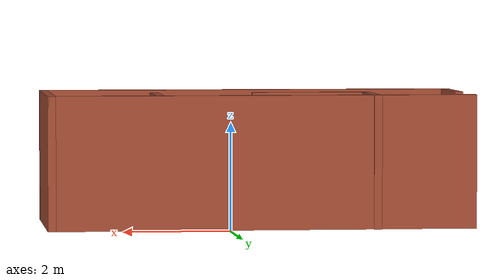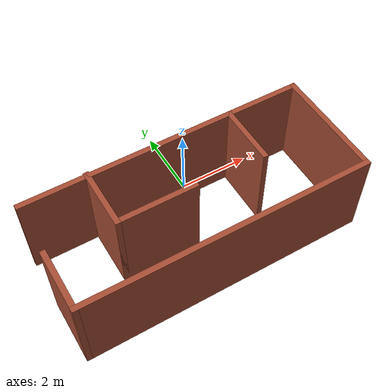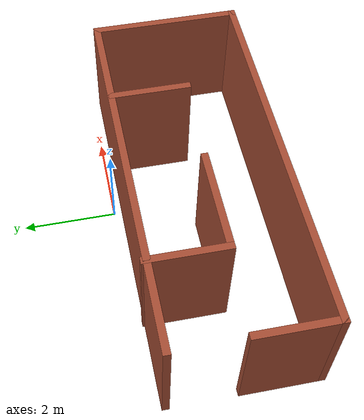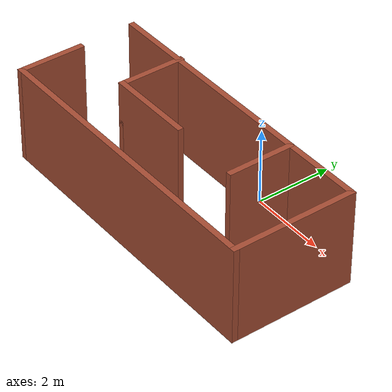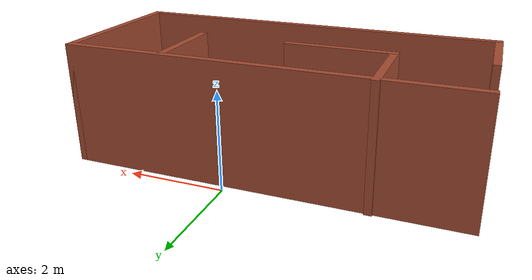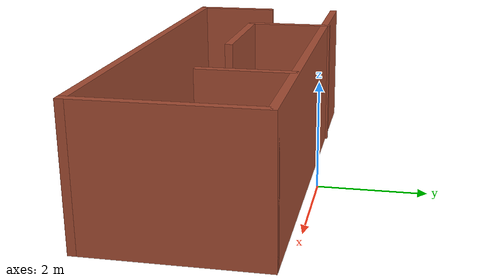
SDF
<?xml version='1.0'?>
<sdf version='1.7'>
  <model name='Untitled'>
    <pose>-0.635 -1.7075 0 0 -0 0</pose>
    <link name='Wall_0'>
      <collision name='Wall_0_Collision'>
        <geometry>
          <box>
            <size>8 0.15 2.5</size>
          </box>
        </geometry>
        <pose>0 0 1.25 0 -0 0</pose>
      </collision>
      <visual name='Wall_0_Visual'>
        <pose>0 0 1.25 0 -0 0</pose>
        <geometry>
          <box>
            <size>8 0.15 2.5</size>
          </box>
        </geometry>
        <material>
          <script>
            <uri>file://media/materials/scripts/gazebo.material</uri>
            <name>Gazebo/Bricks</name>
          </script>
          <ambient>1 1 1 1</ambient>
        </material>
        <meta>
          <layer>0</layer>
        </meta>
      </visual>
      <pose>0 1.4675 0 0 -0 0</pose>
    </link>
    <link name='Wall_10'>
      <collision name='Wall_10_Collision'>
        <geometry>
          <box>
            <size>1.75 0.15 2.5</size>
          </box>
        </geometry>
        <pose>0 0 1.25 0 -0 0</pose>
      </collision>
      <visual name='Wall_10_Visual'>
        <pose>0 0 1.25 0 -0 0</pose>
        <geometry>
          <box>
            <size>1.75 0.15 2.5</size>
          </box>
        </geometry>
        <material>
          <script>
            <uri>file://media/materials/scripts/gazebo.material</uri>
            <name>Gazebo/Bricks</name>
          </script>
          <ambient>1 1 1 1</ambient>
        </material>
        <meta>
          <layer>0</layer>
        </meta>
      </visual>
      <pose>1.905 0.6475 0 0 -0 -1.5708</pose>
    </link>
    <link name='Wall_2'>
      <collision name='Wall_2_Collision'>
        <geometry>
          <box>
            <size>3.25 0.15 2.5</size>
          </box>
        </geometry>
        <pose>0 0 1.25 0 -0 0</pose>
      </collision>
      <visual name='Wall_2_Visual'>
        <pose>0 0 1.25 0 -0 0</pose>
        <geometry>
          <box>
            <size>3.25 0.15 2.5</size>
          </box>
        </geometry>
        <material>
          <script>
            <uri>file://media/materials/scripts/gazebo.material</uri>
            <name>Gazebo/Bricks</name>
          </script>
          <ambient>1 1 1 1</ambient>
        </material>
        <meta>
          <layer>0</layer>
        </meta>
      </visual>
      <pose>3.925 -0.0825 0 0 -0 -1.5708</pose>
    </link>
    <link name='Wall_3'>
      <collision name='Wall_3_Collision'>
        <geometry>
          <box>
            <size>8 0.15 2.5</size>
          </box>
        </geometry>
        <pose>0 0 1.25 0 -0 0</pose>
      </collision>
      <visual name='Wall_3_Visual'>
        <pose>0 0 1.25 0 -0 0</pose>
        <geometry>
          <box>
            <size>8 0.15 2.5</size>
          </box>
        </geometry>
        <material>
          <script>
            <uri>file://media/materials/scripts/gazebo.material</uri>
            <name>Gazebo/Bricks</name>
          </script>
          <ambient>1 1 1 1</ambient>
        </material>
        <meta>
          <layer>0</layer>
        </meta>
      </visual>
      <pose>0 -1.6325 0 0 -0 3.14159</pose>
    </link>
    <link name='Wall_4'>
      <collision name='Wall_4_Collision'>
        <geometry>
          <box>
            <size>1.75 0.15 2.5</size>
          </box>
        </geometry>
        <pose>0 0 1.25 0 -0 0</pose>
      </collision>
      <visual name='Wall_4_Visual'>
        <pose>0 0 1.25 0 -0 0</pose>
        <geometry>
          <box>
            <size>1.75 0.15 2.5</size>
          </box>
        </geometry>
        <material>
          <script>
            <uri>file://media/materials/scripts/gazebo.material</uri>
            <name>Gazebo/Bricks</name>
          </script>
          <ambient>1 1 1 1</ambient>
        </material>
        <meta>
          <layer>0</layer>
        </meta>
      </visual>
      <pose>-3.925 -0.8325 0 0 -0 1.5708</pose>
    </link>
    <link name='Wall_6'>
      <collision name='Wall_6_Collision'>
        <geometry>
          <box>
            <size>1.75 0.15 2.5</size>
          </box>
        </geometry>
        <pose>0 0 1.25 0 -0 0</pose>
      </collision>
      <visual name='Wall_6_Visual'>
        <pose>0 0 1.25 0 -0 0</pose>
        <geometry>
          <box>
            <size>1.75 0.15 2.5</size>
          </box>
        </geometry>
        <material>
          <script>
            <uri>file://media/materials/scripts/gazebo.material</uri>
            <name>Gazebo/Bricks</name>
          </script>
          <ambient>1 1 1 1</ambient>
        </material>
        <meta>
          <layer>0</layer>
        </meta>
      </visual>
      <pose>-2.135 0.7075 0 0 -0 -1.5708</pose>
    </link>
    <link name='Wall_7'>
      <collision name='Wall_7_Collision'>
        <geometry>
          <box>
            <size>2.25 0.15 2.5</size>
          </box>
        </geometry>
        <pose>0 0 1.25 0 -0 0</pose>
      </collision>
      <visual name='Wall_7_Visual'>
        <pose>0 0 1.25 0 -0 0</pose>
        <geometry>
          <box>
            <size>2.25 0.15 2.5</size>
          </box>
        </geometry>
        <material>
          <script>
            <uri>file://media/materials/scripts/gazebo.material</uri>
            <name>Gazebo/Bricks</name>
          </script>
          <ambient>1 1 1 1</ambient>
        </material>
        <meta>
          <layer>0</layer>
        </meta>
      </visual>
      <pose>-1.085 -0.0925 0 0 -0 0</pose>
    </link>
    <static>1</static>
  </model>
</sdf>
